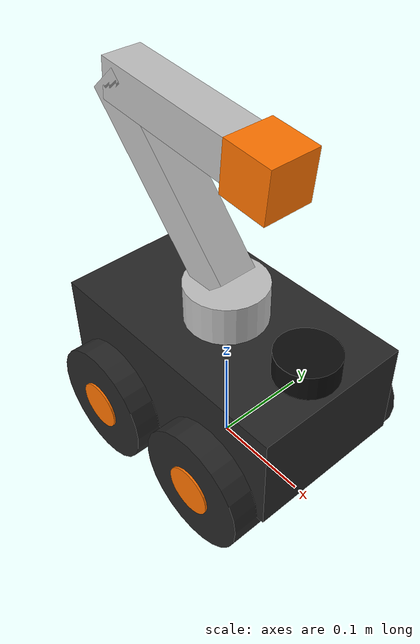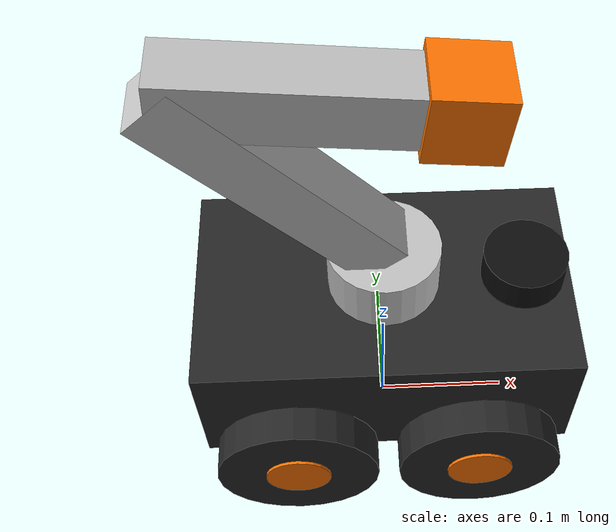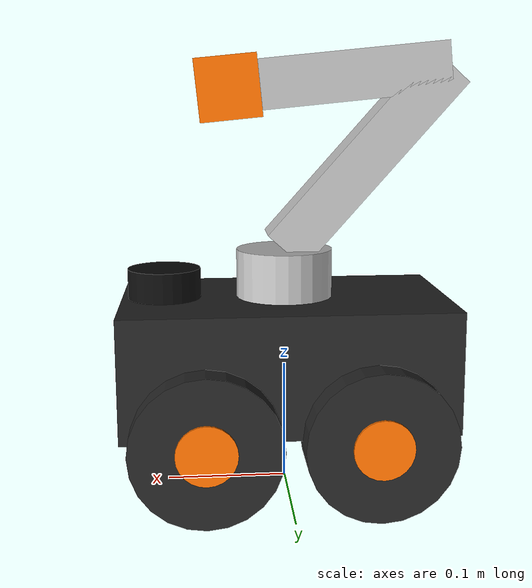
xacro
<?xml version="1.0" encoding="UTF-8"?>
<robot xmlns:xacro="http://www.ros.org/wiki/xacro" name="waking_robot">

    <xacro:property name="PI" value="3.1415926535897931" />
    <material name="matte_deep_grey"><color rgba="0.15 0.15 0.15 1.0"/></material>
    <material name="metallic_silver"><color rgba="0.75 0.75 0.75 1.0"/></material>
    <material name="vibrant_orange"><color rgba="1.0 0.45 0.0 1.0"/></material>
    <material name="smoky_black"><color rgba="0.05 0.05 0.05 1.0"/></material>

    <xacro:property name="base_width" value="0.27" />
    <xacro:property name="base_depth" value="0.16" />
    <xacro:property name="base_height" value="0.1" />
    <xacro:property name="wheel_radius" value="0.06" />
    <xacro:property name="wheel_length" value="0.05" />
    <xacro:property name="arm_base_length" value="0.04" />
    <xacro:property name="big_arm_length" value="0.20" />
    <xacro:property name="small_arm_length" value="0.18" />
    <xacro:property name="camera_link_size" value="0.05" />

    <xacro:property name="base_mass" value="25.0" />
    <xacro:property name="base_com_z" value="0.01" />

    <xacro:property name="arm_mass_scale" value="0.5" />
    <xacro:property name="camera_mass" value="0.01" />

    <xacro:property name="joint_damping" value="0.5" />
    <xacro:property name="joint_friction" value="0.1" />

    <xacro:property name="wheel_mass" value="1.5" />
    <xacro:property name="wheel_friction" value="0.0" />

    <xacro:macro name="box_inertia" params="m w h d">
        <inertial>
            <mass value="${m}"/>
            <inertia ixx="${(1.0/12.0)*m*(h*h + d*d)}" ixy="0.0" ixz="0.0"
                     iyy="${(1.0/12.0)*m*(w*w + d*d)}" iyz="0.0"
                     izz="${(1.0/12.0)*m*(w*w + h*h)}"/>
        </inertial>
    </xacro:macro>
    <xacro:macro name="cylinder_inertia" params="m r h">
        <inertial>
            <mass value="${m}"/>
            <inertia ixx="${(1.0/12.0)*m*(3.0*r*r + h*h)}" ixy="0.0" ixz="0.0"
                     iyy="${(1.0/12.0)*m*(3.0*r*r + h*h)}" iyz="0.0"
                     izz="${0.5*m*r*r}"/>
        </inertial>
    </xacro:macro>

    <link name="base_footprint"/>
    <joint name="base_footprint_joint" type="fixed">
        <parent link="base_footprint"/>
        <child link="base_link"/>
        <origin xyz="0 0 ${wheel_radius}" rpy="0 0 0"/>
    </joint>
    <link name="base_link">
        <visual>
            <geometry><box size="${base_width} ${base_depth} ${base_height}"/></geometry>
            <origin xyz="0 0 ${base_height/2.0}" rpy="0 0 0"/>
            <material name="matte_deep_grey"/>
        </visual>
        <collision>
            <geometry><box size="${base_width} ${base_depth} ${base_height}"/></geometry>
            <origin xyz="0 0 ${base_height/2.0}" rpy="0 0 0"/>
        </collision>
        <inertial>
            <mass value="${base_mass}"/>
            <origin xyz="0 0 ${base_com_z}" rpy="0 0 0"/>
            <inertia ixx="${(1.0/12.0)*base_mass*(base_depth*base_depth + base_height*base_height)}"
                     ixy="0.0" ixz="0.0"
                     iyy="${(1.0/12.0)*base_mass*(base_width*base_width + base_height*base_height)}"
                     iyz="0.0"
                     izz="${(1.0/12.0)*base_mass*(base_width*base_width + base_depth*base_depth)}"/>
        </inertial>
    </link>

    <xacro:macro name="create_wheel" params="prefix y_pos x_pos rpy_rot hubcap_y">
        <joint name="base_to_${prefix}_wheel" type="continuous">
            <parent link="base_link"/>
            <child link="${prefix}_wheel"/>
            <origin xyz="${x_pos} ${y_pos} 0"/>
            <axis xyz="0 1 0"/>
            <dynamics damping="0.0" friction="0.0"/> </joint>
        <link name="${prefix}_wheel">
            <visual>
                <origin rpy="${rpy_rot} 0 0"/>
                <geometry><cylinder radius="${wheel_radius}" length="${wheel_length}"/></geometry>
                <material name="matte_deep_grey"/>
            </visual>
            <visual name="hubcap">
                <origin rpy="${rpy_rot} 0 0" xyz="0 ${hubcap_y} 0"/>
                <geometry><cylinder radius="${wheel_radius*0.4}" length="0.002"/></geometry>
                <material name="vibrant_orange"/>
            </visual>
            <collision>
                <origin rpy="${rpy_rot} 0 0"/>
                <geometry><cylinder radius="${wheel_radius}" length="${wheel_length}"/></geometry>
            </collision>
            <xacro:cylinder_inertia m="${wheel_mass}" r="${wheel_radius}" h="${wheel_length}"/>
        </link>
        <transmission name="${prefix}_wheel_trans">
            <type>transmission_interface/SimpleTransmission</type>
            <joint name="base_to_${prefix}_wheel">
                <hardwareInterface>hardware_interface/VelocityJointInterface</hardwareInterface>
            </joint>
            <actuator name="${prefix}_wheel_motor">
                <hardwareInterface>hardware_interface/VelocityJointInterface</hardwareInterface>
                <mechanicalReduction>1</mechanicalReduction>
            </actuator>
        </transmission>
    </xacro:macro>

    <xacro:create_wheel prefix="front_left" y_pos="${base_depth/2.0}" x_pos="${base_width/4.0}" rpy_rot="${PI/2.0}" hubcap_y="${wheel_length/2.0 + 0.001}"/>
    <xacro:create_wheel prefix="rear_left" y_pos="${base_depth/2.0}" x_pos="${-base_width/4.0}" rpy_rot="${PI/2.0}" hubcap_y="${wheel_length/2.0 + 0.001}"/>
    <xacro:create_wheel prefix="front_right" y_pos="${-base_depth/2.0}" x_pos="${base_width/4.0}" rpy_rot="${-PI/2.0}" hubcap_y="${-wheel_length/2.0 - 0.001}"/>
    <xacro:create_wheel prefix="rear_right" y_pos="${-base_depth/2.0}" x_pos="${-base_width/4.0}" rpy_rot="${-PI/2.0}" hubcap_y="${-wheel_length/2.0 - 0.001}"/>

    <joint name="arm_base_joint" type="revolute">
        <parent link="base_link"/>
        <child link="arm_base_link"/>
        <origin xyz="0 0 ${base_height}" rpy="0 0 0"/>
        <axis xyz="0 0 1"/>
        <limit lower="-1.57" upper="1.57" effort="20.0" velocity="2.0"/>
        <dynamics damping="${joint_damping}" friction="${joint_friction}"/>
    </joint>
    <link name="arm_base_link">
        <visual>
            <geometry><cylinder radius="0.04" length="${arm_base_length}"/></geometry>
            <origin xyz="0 0 ${arm_base_length/2.0}" rpy="0 0 0"/>
            <material name="metallic_silver"/>
        </visual>
        <collision>
            <geometry><cylinder radius="0.04" length="${arm_base_length}"/></geometry>
            <origin xyz="0 0 ${arm_base_length/2.0}" rpy="0 0 0"/>
        </collision>
        <xacro:cylinder_inertia m="${0.5*arm_mass_scale}" r="0.04" h="${arm_base_length}"/>
    </link>
    <transmission name="arm_base_trans">
        <type>transmission_interface/SimpleTransmission</type>
        <joint name="arm_base_joint">
            <hardwareInterface>hardware_interface/EffortJointInterface</hardwareInterface>
        </joint>
        <actuator name="arm_base_motor">
            <hardwareInterface>hardware_interface/EffortJointInterface</hardwareInterface>
            <mechanicalReduction>1</mechanicalReduction>
        </actuator>
    </transmission>

    <joint name="big_arm_joint" type="revolute">
        <parent link="arm_base_link"/>
        <child link="big_arm_link"/>
        <origin xyz="0 0 ${arm_base_length}" rpy="0 -2.3 0"/>
        <axis xyz="0 1 0"/>
        <limit lower="-1.5" upper="1.5" effort="20.0" velocity="2.0"/>
        <dynamics damping="${joint_damping}" friction="${joint_friction}"/>
    </joint>
    <link name="big_arm_link">
        <visual>
            <geometry><box size="${big_arm_length} 0.04 0.04"/></geometry>
            <origin xyz="${big_arm_length/2.0} 0 0" rpy="0 0 0"/>
            <material name="metallic_silver"/>
        </visual>
        <collision>
            <geometry><box size="${big_arm_length} 0.04 0.04"/></geometry>
            <origin xyz="${big_arm_length/2.0} 0 0" rpy="0 0 0"/>
        </collision>
        <xacro:box_inertia m="${1.0*arm_mass_scale}" w="${big_arm_length}" h="0.04" d="0.04"/>
    </link>
    <transmission name="big_arm_trans">
        <type>transmission_interface/SimpleTransmission</type>
        <joint name="big_arm_joint">
            <hardwareInterface>hardware_interface/EffortJointInterface</hardwareInterface>
        </joint>
        <actuator name="big_arm_motor">
            <hardwareInterface>hardware_interface/EffortJointInterface</hardwareInterface>
            <mechanicalReduction>1</mechanicalReduction>
        </actuator>
    </transmission>

    <joint name="small_arm_joint" type="revolute">
        <parent link="big_arm_link"/>
        <child link="small_arm_link"/>
        <origin xyz="${big_arm_length} 0 0" rpy="0 2.4 0"/>
        <axis xyz="0 1 0"/>
        <limit lower="-1.5" upper="1.5" effort="20.0" velocity="2.0"/>
        <dynamics damping="${joint_damping}" friction="${joint_friction}"/>
    </joint>
    <link name="small_arm_link">
        <visual>
            <geometry><box size="${small_arm_length} 0.04 0.04"/></geometry>
            <origin xyz="${small_arm_length/2.0} 0 0" rpy="0 0 0"/>
            <material name="metallic_silver"/>
        </visual>
        <collision>
            <geometry><box size="${small_arm_length} 0.04 0.04"/></geometry>
            <origin xyz="${small_arm_length/2.0} 0 0" rpy="0 0 0"/>
        </collision>
        <xacro:box_inertia m="${0.8*arm_mass_scale}" w="${small_arm_length}" h="0.04" d="0.04"/>
    </link>
    <transmission name="small_arm_trans">
        <type>transmission_interface/SimpleTransmission</type>
        <joint name="small_arm_joint">
            <hardwareInterface>hardware_interface/EffortJointInterface</hardwareInterface>
        </joint>
        <actuator name="small_arm_motor">
            <hardwareInterface>hardware_interface/EffortJointInterface</hardwareInterface>
            <mechanicalReduction>1</mechanicalReduction>
        </actuator>
    </transmission>

    <joint name="camera_joint" type="fixed">
        <parent link="small_arm_link"/>
        <child link="camera_link"/>
        <origin xyz="${small_arm_length} 0 0" rpy="0 0 0"/>
    </joint>
    <link name="camera_link">
        <visual>
            <geometry><box size="${camera_link_size} ${camera_link_size} ${camera_link_size}"/></geometry>
            <material name="vibrant_orange"/>
        </visual>
        <collision>
            <geometry><box size="${camera_link_size} ${camera_link_size} ${camera_link_size}"/></geometry>
        </collision>
        <xacro:box_inertia m="${camera_mass}" w="${camera_link_size}" h="${camera_link_size}" d="${camera_link_size}"/>
    </link>

    <link name="camera_depth_optical_frame"/>

    <joint name="camera_depth_optical_joint" type="fixed">
        <parent link="camera_link"/>
        <child link="camera_depth_optical_frame"/>
        <origin xyz="0 0 0" rpy="-1.5708 0 -1.5708"/>
    </joint>

    <joint name="laser_joint" type="fixed">
        <parent link="base_link"/>
        <child link="laser_frame"/>
        <origin xyz="0.1 0 ${base_height}" rpy="0 0 0"/>
    </joint>
    <link name="laser_frame">
        <visual>
            <geometry><cylinder radius="0.03" length="0.05"/></geometry>
            <material name="smoky_black"/>
        </visual>
        <collision>
            <geometry><cylinder radius="0.03" length="0.05"/></geometry>
        </collision>
        <xacro:cylinder_inertia m="0.05" r="0.03" h="0.05"/>
    </link>

    <joint name="imu_joint" type="fixed">
        <parent link="base_link"/>
        <child link="imu_link"/>
        <origin xyz="0 0 ${base_height}" rpy="0 0 0"/>
    </joint>
    <link name="imu_link">
        <visual>
            <geometry><box size="0.02 0.02 0.02"/></geometry>
            <material name="vibrant_orange"/>
        </visual>
        <collision>
            <geometry><box size="0.02 0.02 0.02"/></geometry>
        </collision>
        <xacro:box_inertia m="0.001" w="0.02" h="0.02" d="0.02"/>
    </link>

    <gazebo reference="base_link"><material>Gazebo/DarkGrey</material></gazebo>
    <gazebo reference="front_left_wheel"><material>Gazebo/DarkGrey</material></gazebo>
    <gazebo reference="front_right_wheel"><material>Gazebo/DarkGrey</material></gazebo>
    <gazebo reference="rear_left_wheel"><material>Gazebo/DarkGrey</material></gazebo>
    <gazebo reference="rear_right_wheel"><material>Gazebo/DarkGrey</material></gazebo>
    <gazebo reference="arm_base_link"><material>Gazebo/Silver</material></gazebo>
    <gazebo reference="big_arm_link"><material>Gazebo/Silver</material></gazebo>
    <gazebo reference="small_arm_link"><material>Gazebo/Silver</material></gazebo>
    <gazebo reference="camera_link"><material>Gazebo/Orange</material></gazebo>
    <gazebo reference="laser_frame"><material>Gazebo/Black</material></gazebo>
    <gazebo reference="imu_link"><material>Gazebo/Orange</material></gazebo>

    <gazebo>
        <physics name="default_physics" default="true" type="ode">
            <max_step_size>0.001</max_step_size> <real_time_factor>1.0</real_time_factor>
            <real_time_update_rate>1000</real_time_update_rate>
            <ode>
                <solver>
                    <type>quick</type>
                    <iters>50</iters>
                    <sor>1.3</sor>
                </solver>
                <constraints>
                    <cfm>0.0</cfm>
                    <erp>0.2</erp>
                    <contact_max_correcting_vel>100.0</contact_max_correcting_vel>
                    <contact_surface_layer>0.001</contact_surface_layer>
                </constraints>
            </ode>
        </physics>
    </gazebo>

    <gazebo reference="front_left_wheel">
        <mu1>${wheel_friction}</mu1><mu2>${wheel_friction}</mu2>
    </gazebo>
    <gazebo reference="front_right_wheel">
        <mu1>${wheel_friction}</mu1><mu2>${wheel_friction}</mu2>
    </gazebo>
    <gazebo reference="rear_left_wheel">
        <mu1>${wheel_friction}</mu1><mu2>${wheel_friction}</mu2>
    </gazebo>
    <gazebo reference="rear_right_wheel">
        <mu1>${wheel_friction}</mu1><mu2>${wheel_friction}</mu2>
    </gazebo>

    <gazebo>
        <plugin name="planar_move_plugin" filename="libgazebo_ros_planar_move.so">
            <commandTopic>cmd_vel</commandTopic>
            <odometryTopic>odom</odometryTopic>
            <odometryFrame>odom</odometryFrame>
            <odometryRate>50.0</odometryRate>
            <robotBaseFrame>base_footprint</robotBaseFrame>
            <publishOdometryTf>true</publishOdometryTf>
        </plugin>
    </gazebo>

    <gazebo>
        <plugin name="gazebo_ros_control" filename="libgazebo_ros_control.so">
            <robotNamespace>/</robotNamespace>
        </plugin>
    </gazebo>

    <gazebo reference="laser_frame">
        <sensor type="ray" name="laser_sensor">
            <visualize>false</visualize>
            <update_rate>10.0</update_rate>
            <ray>
                <scan>
                    <horizontal>
                        <samples>360</samples>
                        <min_angle>${-PI}</min_angle>
                        <max_angle>${PI}</max_angle>
                    </horizontal>
                </scan>
                <range><min>0.1</min><max>10.0</max></range>
            </ray>
            <plugin name="gazebo_ros_laser" filename="libgazebo_ros_laser.so">
                <topicName>/scan</topicName>
                <frameName>laser_frame</frameName>
            </plugin>
        </sensor>
    </gazebo>

    <gazebo reference="camera_link">
        <sensor type="depth" name="camera_sensor">
            <update_rate>20.0</update_rate>
            <camera>
                <horizontal_fov>1.047</horizontal_fov>
                <image><width>640</width><height>480</height><format>R8G8B8</format></image>
                <clip><near>0.05</near><far>8.0</far></clip>
            </camera>
            <plugin name="camera_controller" filename="libgazebo_ros_openni_kinect.so">
                <cameraName>camera</cameraName>
                <alwaysOn>true</alwaysOn>
                <updateRate>20.0</updateRate>
                <imageTopicName>rgb/image_raw</imageTopicName>
                <depthImageTopicName>depth/image_raw</depthImageTopicName>
                <pointCloudTopicName>depth/points</pointCloudTopicName>
                <cameraInfoTopicName>rgb/camera_info</cameraInfoTopicName>
                <depthImageCameraInfoTopicName>depth/camera_info</depthImageCameraInfoTopicName>
                <frameName>camera_depth_optical_frame</frameName>
                <baseline>0.1</baseline>
            </plugin>
        </sensor>
    </gazebo>

    <gazebo reference="imu_link">
        <sensor name="imu_sensor" type="imu">
            <always_on>true</always_on>
            <update_rate>100.0</update_rate>
            <plugin filename="libgazebo_ros_imu_sensor.so" name="imu_plugin">
                <topicName>imu</topicName>
                <bodyName>imu_link</bodyName>
                <frameName>imu_link</frameName>
                <updateRateHZ>100.0</updateRateHZ>
            </plugin>
        </sensor>
    </gazebo>

</robot>
